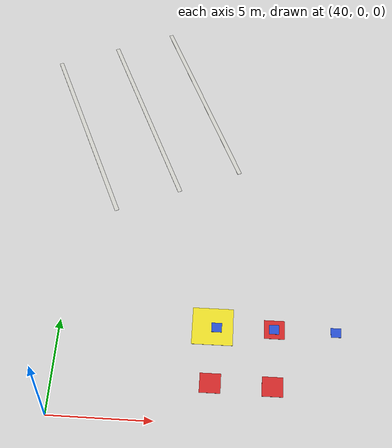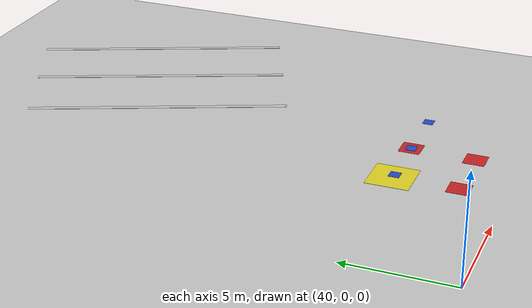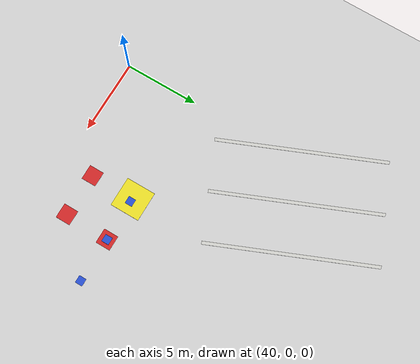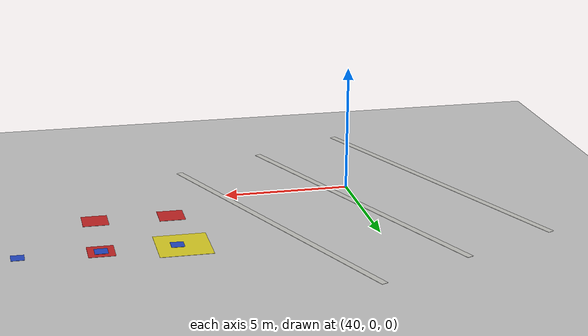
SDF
<sdf version="1.6">
 <world name="default">
  <model name="ground_plane">
   <static>1</static>
   <link name="link">
    <collision name="collision">
     <geometry><plane><normal>0 0 1</normal><size>100 100</size></plane></geometry>
     <surface><friction><ode><mu>100</mu><mu2>50</mu2></ode></friction></surface>
    </collision>
    <visual name="visual">
     <cast_shadows>0</cast_shadows>
     <geometry><plane><normal>0 0 1</normal><size>100 100</size></plane></geometry>
     <material>
      <script><uri>file://media/materials/scripts/gazebo.material</uri><name>Gazebo/Grey</name></script>
     </material>
    </visual>
   </link>
  </model>
  <model name="my_objectT4">
   <link name="my_box">
    <inertial>
     <mass>1</mass>
     <inertia><ixx>1</ixx><ixy>0</ixy><ixz>0</ixz><iyy>100</iyy><iyz>0</iyz><izz>1</izz></inertia>
    </inertial>
    <collision name="my_box_collision"><geometry><box><size>2 2 0.01</size></box></geometry></collision>
    <visual name="my_box_visual">
     <geometry><box><size>2 2 0.01</size></box></geometry>
     <material>
      <script><name>Gazebo/Yellow</name><uri>file://media/materials/scripts/gazebo.material</uri></script>
     </material>
    </visual>
   </link>
   <pose>47.4911 4.99596 0.114989 5e-06 2.5e-05 0.003713</pose>
  </model>
  <model name="my_objecteg3w1">
   <link name="my_box">
    <inertial>
     <mass>1</mass>
     <inertia><ixx>1</ixx><ixy>0</ixy><ixz>0</ixz><iyy>100</iyy><iyz>0</iyz><izz>1</izz></inertia>
    </inertial>
    <collision name="my_box_collision"><geometry><box><size>1 1 0.01</size></box></geometry></collision>
    <visual name="my_box_visual">
     <geometry><box><size>1 1 0.01</size></box></geometry>
     <material>
      <script><name>Gazebo/Red</name><uri>file://media/materials/scripts/gazebo.material</uri></script>
     </material>
    </visual>
   </link>
   <pose>50.4299 1.98378 0.104995 0 -0 0</pose>
  </model>
  <model name="my_objecteg3w2">
   <link name="my_box">
    <inertial>
     <mass>1</mass>
     <inertia><ixx>1</ixx><ixy>0</ixy><ixz>0</ixz><iyy>100</iyy><iyz>0</iyz><izz>1</izz></inertia>
    </inertial>
    <collision name="my_box_collision"><geometry><box><size>1 1 0.01</size></box></geometry></collision>
    <visual name="my_box_visual">
     <geometry><box><size>1 1 0.01</size></box></geometry>
     <material>
      <script><name>Gazebo/Red</name><uri>file://media/materials/scripts/gazebo.material</uri></script>
     </material>
    </visual>
   </link>
   <pose>50.4995 4.99539 0.105002 0 3e-06 0.000328</pose>
  </model>
  <model name="my_objecteg3w3">
   <link name="my_box">
    <inertial>
     <mass>1</mass>
     <inertia><ixx>1</ixx><ixy>0</ixy><ixz>0</ixz><iyy>100</iyy><iyz>0</iyz><izz>1</izz></inertia>
    </inertial>
    <collision name="my_box_collision"><geometry><box><size>1 1 0.01</size></box></geometry></collision>
    <visual name="my_box_visual">
     <geometry><box><size>1 1 0.01</size></box></geometry>
     <material>
      <script><name>Gazebo/Red</name><uri>file://media/materials/scripts/gazebo.material</uri></script>
     </material>
    </visual>
   </link>
   <pose>47.5 2 0.104998 0 -0 0</pose>
  </model>
  <model name="my_objectg1w1">
   <link name="my_box">
    <inertial>
     <mass>1</mass>
     <inertia><ixx>1</ixx><ixy>0</ixy><ixz>0</ixz><iyy>100</iyy><iyz>0</iyz><izz>1</izz></inertia>
    </inertial>
    <collision name="my_box_collision"><geometry><box><size>0.5 0.5 0.01</size></box></geometry></collision>
    <visual name="my_box_visual">
     <geometry><box><size>0.5 0.5 0.01</size></box></geometry>
     <material>
      <script><name>Gazebo/Blue</name><uri>file://media/materials/scripts/gazebo.material</uri></script>
     </material>
    </visual>
   </link>
   <pose>47.4983 5.0049 0.105007 8e-06 1.9e-05 -0.001771</pose>
  </model>
  <model name="my_objectg1w2">
   <link name="my_box">
    <inertial>
     <mass>1</mass>
     <inertia><ixx>1</ixx><ixy>0</ixy><ixz>0</ixz><iyy>100</iyy><iyz>0</iyz><izz>1</izz></inertia>
    </inertial>
    <collision name="my_box_collision"><geometry><box><size>0.5 0.5 0.01</size></box></geometry></collision>
    <visual name="my_box_visual">
     <geometry><box><size>0.5 0.5 0.01</size></box></geometry>
     <material>
      <script><name>Gazebo/Blue</name><uri>file://media/materials/scripts/gazebo.material</uri></script>
     </material>
    </visual>
   </link>
   <pose>50.497 5.00193 0.115024 8.8e-05 3e-06 0.000456</pose>
  </model>
  <model name="my_objectg1w3">
   <link name="my_box">
    <inertial>
     <mass>1</mass>
     <inertia><ixx>1</ixx><ixy>0</ixy><ixz>0</ixz><iyy>100</iyy><iyz>0</iyz><izz>1</izz></inertia>
    </inertial>
    <collision name="my_box_collision"><geometry><box><size>0.5 0.5 0.01</size></box></geometry></collision>
    <visual name="my_box_visual">
     <geometry><box><size>0.5 0.5 0.01</size></box></geometry>
     <material>
      <script><name>Gazebo/Blue</name><uri>file://media/materials/scripts/gazebo.material</uri></script>
     </material>
    </visual>
   </link>
   <pose>53.4967 5.0058 0.104999 -5e-06 -1e-06 -0.000646</pose>
  </model>
  <model name="35_clone_1">
   <link name="Wall_2">
    <pose>0 0 0 0 -0 1.9706</pose>
    <gravity>0</gravity>
    <inertial>
     <mass>1</mass>
     <inertia><ixx>1</ixx><ixy>0</ixy><ixz>0</ixz><iyy>1</iyy><iyz>0</iyz><izz>1</izz></inertia>
    </inertial>
    <visual name="Wall_2_Visual">
     <pose>0 0 5 0 -0 0</pose>
     <geometry><box><size>10.2688 0.2 0.01</size></box></geometry>
     <material>
      <script><uri>file://media/materials/scripts/gazebo.material</uri><name>Gazebo/CeilingTiled</name></script>
      <ambient>0.435 0.796 0.675 1</ambient>
      <diffuse>1 1 1 1</diffuse>
      <specular>0 0 0 1</specular>
      <emissive>1 1 0 0</emissive>
      <shader type="vertex"><normal_map>__default__</normal_map></shader>
     </material>
    </visual>
    <collision name="Wall_2_Collision">
     <pose>0 0 1.25 0 -0 0</pose>
     <geometry><box><size>10.2688 0.001 2.5</size></box></geometry>
     <surface>
      <friction>
       <ode><mu>1</mu><mu2>1</mu2><fdir1>0 0 0</fdir1><slip1>0</slip1><slip2>0</slip2></ode>
       <torsional>
        <coefficient>1</coefficient>
        <patch_radius>0</patch_radius>
        <surface_radius>0</surface_radius>
        <use_patch_radius>1</use_patch_radius>
        <ode><slip>0</slip></ode>
       </torsional>
      </friction>
      <bounce><restitution_coefficient>0</restitution_coefficient><threshold>1e+06</threshold></bounce>
      <contact>
       <collide_without_contact>0</collide_without_contact>
       <collide_without_contact_bitmask>1</collide_without_contact_bitmask>
       <collide_bitmask>1</collide_bitmask>
       <ode>
        <soft_cfm>0</soft_cfm>
        <soft_erp>0.2</soft_erp>
        <kp>1e+13</kp>
        <kd>1</kd>
        <max_vel>0.01</max_vel>
        <min_depth>0</min_depth>
       </ode>
       <bullet>
        <split_impulse>1</split_impulse>
        <split_impulse_penetration_threshold>-0.01</split_impulse_penetration_threshold>
        <soft_cfm>0</soft_cfm>
        <soft_erp>0.2</soft_erp>
        <kp>1e+13</kp>
        <kd>1</kd>
       </bullet>
      </contact>
     </surface>
    </collision>
   </link>
   <static>1</static>
   <pose>40.7717 12.9054 0 0 -0 0</pose>
  </model>
  <model name="35_clone_0_0">
   <link name="Wall_2">
    <pose>0 0 0 0 -0 1.9706</pose>
    <gravity>0</gravity>
    <inertial>
     <mass>1</mass>
     <inertia><ixx>1</ixx><ixy>0</ixy><ixz>0</ixz><iyy>1</iyy><iyz>0</iyz><izz>1</izz></inertia>
    </inertial>
    <visual name="Wall_2_Visual">
     <pose>0 0 5 0 -0 0</pose>
     <geometry><box><size>10.2688 0.2 0.01</size></box></geometry>
     <material>
      <script><uri>file://media/materials/scripts/gazebo.material</uri><name>Gazebo/CeilingTiled</name></script>
      <ambient>0.435 0.796 0.675 1</ambient>
      <diffuse>1 1 1 1</diffuse>
      <specular>0 0 0 1</specular>
      <emissive>1 1 0 1</emissive>
      <shader type="vertex"><normal_map>__default__</normal_map></shader>
     </material>
    </visual>
    <collision name="Wall_2_Collision">
     <pose>0 0 1.25 0 -0 0</pose>
     <geometry><box><size>10.2688 0.001 2.5</size></box></geometry>
     <surface>
      <friction>
       <ode><mu>1</mu><mu2>1</mu2><fdir1>0 0 0</fdir1><slip1>0</slip1><slip2>0</slip2></ode>
       <torsional>
        <coefficient>1</coefficient>
        <patch_radius>0</patch_radius>
        <surface_radius>0</surface_radius>
        <use_patch_radius>1</use_patch_radius>
        <ode><slip>0</slip></ode>
       </torsional>
      </friction>
      <bounce><restitution_coefficient>0</restitution_coefficient><threshold>1e+06</threshold></bounce>
      <contact>
       <collide_without_contact>0</collide_without_contact>
       <collide_without_contact_bitmask>1</collide_without_contact_bitmask>
       <collide_bitmask>1</collide_bitmask>
       <ode>
        <soft_cfm>0</soft_cfm>
        <soft_erp>0.2</soft_erp>
        <kp>1e+13</kp>
        <kd>1</kd>
        <max_vel>0.01</max_vel>
        <min_depth>0</min_depth>
       </ode>
       <bullet>
        <split_impulse>1</split_impulse>
        <split_impulse_penetration_threshold>-0.01</split_impulse_penetration_threshold>
        <soft_cfm>0</soft_cfm>
        <soft_erp>0.2</soft_erp>
        <kp>1e+13</kp>
        <kd>1</kd>
       </bullet>
      </contact>
     </surface>
    </collision>
   </link>
   <static>1</static>
   <pose>46.4308 15.422 0 0 -0 0</pose>
  </model>
  <model name="35_clone_0_0_clone">
   <link name="Wall_2">
    <pose>0 0 0 0 -0 1.9706</pose>
    <gravity>0</gravity>
    <inertial>
     <mass>1</mass>
     <inertia><ixx>1</ixx><ixy>0</ixy><ixz>0</ixz><iyy>1</iyy><iyz>0</iyz><izz>1</izz></inertia>
    </inertial>
    <visual name="Wall_2_Visual">
     <pose>0 0 5 0 -0 0</pose>
     <geometry><box><size>10.2688 0.2 0.01</size></box></geometry>
     <material>
      <script><uri>file://media/materials/scripts/gazebo.material</uri><name>Gazebo/CeilingTiled</name></script>
      <ambient>0.435 0.796 0.675 1</ambient>
      <diffuse>1 1 1 1</diffuse>
      <specular>0 0 0 1</specular>
      <emissive>1 1 0 1</emissive>
      <shader type="vertex"><normal_map>__default__</normal_map></shader>
     </material>
    </visual>
    <collision name="Wall_2_Collision">
     <pose>0 0 1.25 0 -0 0</pose>
     <geometry><box><size>10.2688 0.001 2.5</size></box></geometry>
     <surface>
      <friction>
       <ode><mu>1</mu><mu2>1</mu2><fdir1>0 0 0</fdir1><slip1>0</slip1><slip2>0</slip2></ode>
       <torsional>
        <coefficient>1</coefficient>
        <patch_radius>0</patch_radius>
        <surface_radius>0</surface_radius>
        <use_patch_radius>1</use_patch_radius>
        <ode><slip>0</slip></ode>
       </torsional>
      </friction>
      <bounce><restitution_coefficient>0</restitution_coefficient><threshold>1e+06</threshold></bounce>
      <contact>
       <collide_without_contact>0</collide_without_contact>
       <collide_without_contact_bitmask>1</collide_without_contact_bitmask>
       <collide_bitmask>1</collide_bitmask>
       <ode>
        <soft_cfm>0</soft_cfm>
        <soft_erp>0.2</soft_erp>
        <kp>1e+13</kp>
        <kd>1</kd>
        <max_vel>0.01</max_vel>
        <min_depth>0</min_depth>
       </ode>
       <bullet>
        <split_impulse>1</split_impulse>
        <split_impulse_penetration_threshold>-0.01</split_impulse_penetration_threshold>
        <soft_cfm>0</soft_cfm>
        <soft_erp>0.2</soft_erp>
        <kp>1e+13</kp>
        <kd>1</kd>
       </bullet>
      </contact>
     </surface>
    </collision>
   </link>
   <static>1</static>
   <pose>43.6374 14.1821 0 0 -0 0</pose>
  </model>
  <model name="my_objectg2w1_clone">
   <link name="my_box">
    <inertial>
     <mass>1</mass>
     <inertia><ixx>1</ixx><ixy>0</ixy><ixz>0</ixz><iyy>100</iyy><iyz>0</iyz><izz>1</izz></inertia>
    </inertial>
    <collision name="my_box_collision"><geometry><box><size>0.5 0.5 0.01</size></box></geometry></collision>
    <visual name="my_box_visual">
     <geometry><box><size>0.5 0.5 0.01</size></box></geometry>
     <material>
      <script><name>Gazebo/Blue</name><uri>file://media/materials/scripts/gazebo.material</uri></script>
     </material>
    </visual>
   </link>
   <pose>47.6927 4.9445 0.125004 -4.1e-05 -8e-06 -0.000866</pose>
  </model>
 </world>
</sdf>
